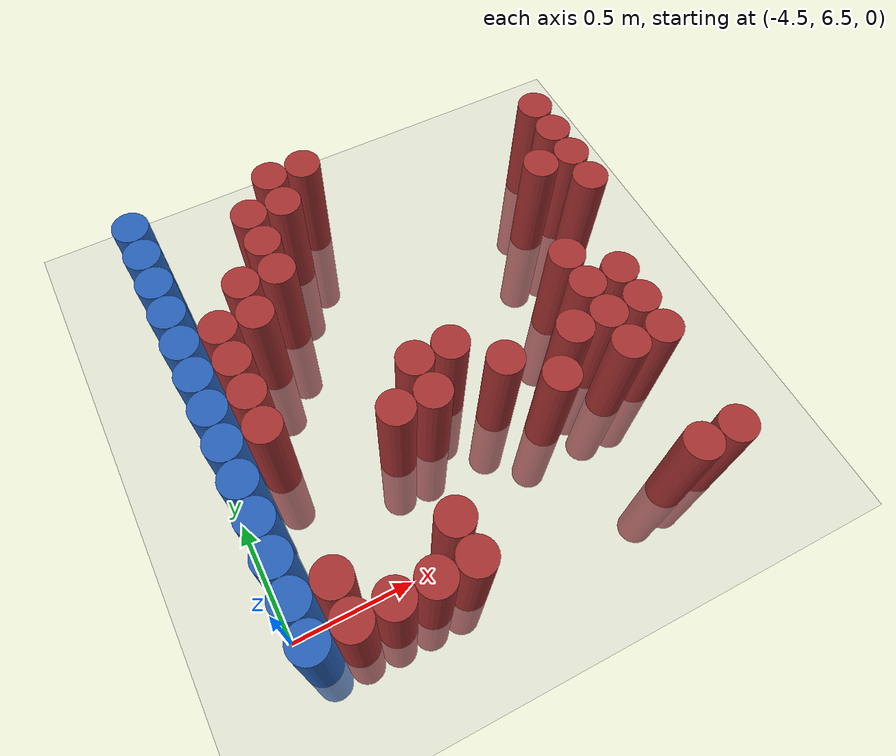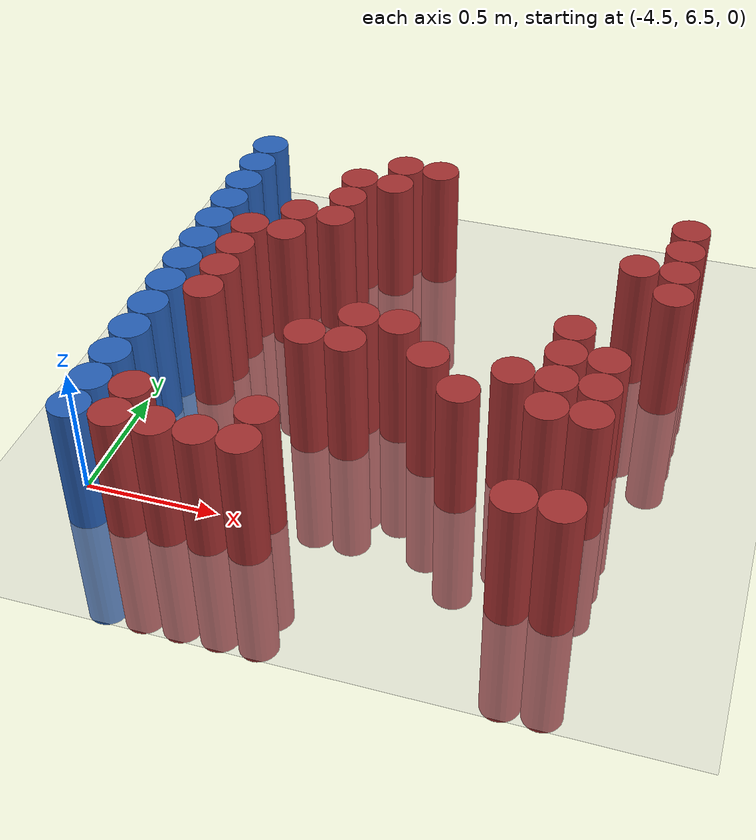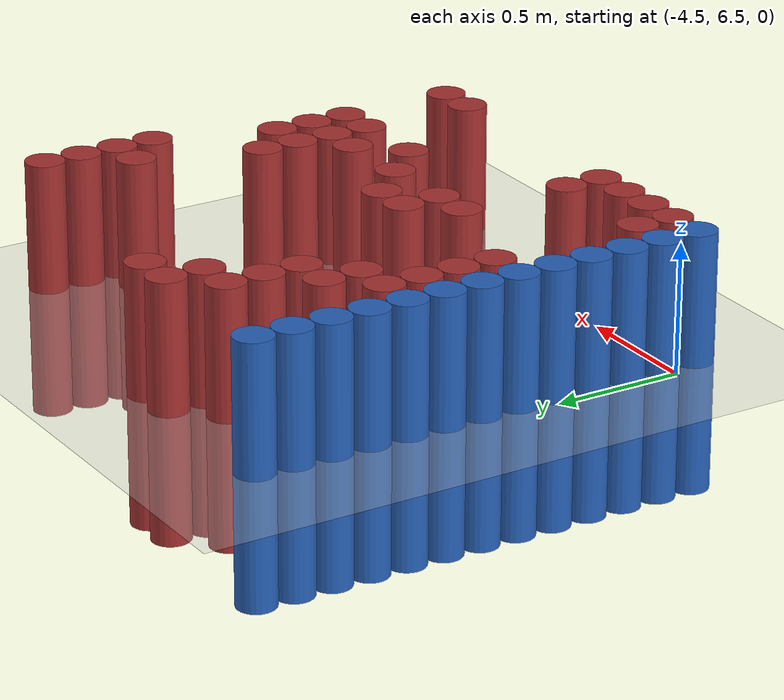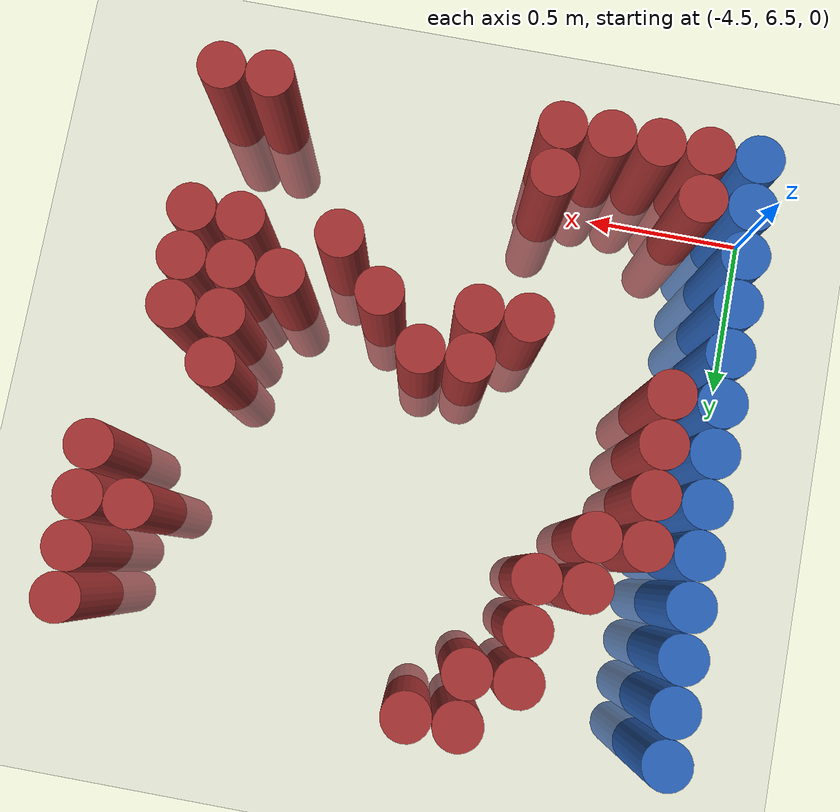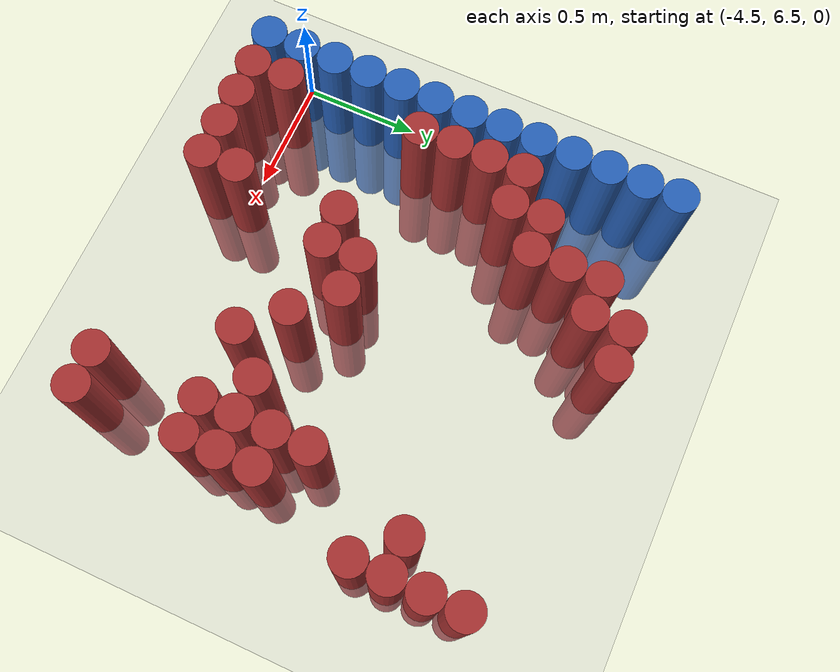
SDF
<sdf version="1.6">
 <world name="default">
  <model name="ground_plane">
   <static>1</static>
   <link name="link">
    <collision name="collision">
     <geometry><plane><normal>0 0 1</normal><size>100 100</size></plane></geometry>
     <surface><friction><ode><mu>100</mu><mu2>50</mu2></ode></friction></surface>
    </collision>
    <visual name="visual">
     <cast_shadows>0</cast_shadows>
     <geometry><plane><normal>0 0 1</normal><size>100 100</size></plane></geometry>
     <material>
      <script><uri>file://media/materials/scripts/gazebo.material</uri><name>Gazebo/Grey</name></script>
     </material>
    </visual>
   </link>
  </model>
  <model name="unit_cylinder_104">
   <static>1</static>
   <pose>-4.425000 6.375000 0.000000 0.000000 0.000000 0.000000</pose>
   <link name="link">
    <inertial>
     <mass>1</mass>
     <inertia><ixx>0.145833</ixx><ixy>0</ixy><ixz>0</ixz><iyy>0.145833</iyy><iyz>0</iyz><izz>0.125</izz></inertia>
    </inertial>
    <collision name="collision">
     <geometry><cylinder><radius>0.075000</radius><length>1</length></cylinder></geometry>
    </collision>
    <visual name="visual">
     <geometry><cylinder><radius>0.075000</radius><length>1</length></cylinder></geometry>
     <material>
      <ambient>0.152000 0.379000 0.720000 1</ambient>
      <diffuse>0.152000 0.379000 0.720000 1</diffuse>
     </material>
     <material>
      <script><name>Gazebo/Grey</name><uri>file://media/materials/scripts/gazebo.material</uri></script>
     </material>
    </visual>
   </link>
  </model>
  <model name="unit_cylinder_105">
   <static>1</static>
   <pose>-4.425000 6.525000 0.000000 0.000000 0.000000 0.000000</pose>
   <link name="link">
    <inertial>
     <mass>1</mass>
     <inertia><ixx>0.145833</ixx><ixy>0</ixy><ixz>0</ixz><iyy>0.145833</iyy><iyz>0</iyz><izz>0.125</izz></inertia>
    </inertial>
    <collision name="collision">
     <geometry><cylinder><radius>0.075000</radius><length>1</length></cylinder></geometry>
    </collision>
    <visual name="visual">
     <geometry><cylinder><radius>0.075000</radius><length>1</length></cylinder></geometry>
     <material>
      <ambient>0.152000 0.379000 0.720000 1</ambient>
      <diffuse>0.152000 0.379000 0.720000 1</diffuse>
     </material>
     <material>
      <script><name>Gazebo/Grey</name><uri>file://media/materials/scripts/gazebo.material</uri></script>
     </material>
    </visual>
   </link>
  </model>
  <model name="unit_cylinder_106">
   <static>1</static>
   <pose>-4.425000 6.675000 0.000000 0.000000 0.000000 0.000000</pose>
   <link name="link">
    <inertial>
     <mass>1</mass>
     <inertia><ixx>0.145833</ixx><ixy>0</ixy><ixz>0</ixz><iyy>0.145833</iyy><iyz>0</iyz><izz>0.125</izz></inertia>
    </inertial>
    <collision name="collision">
     <geometry><cylinder><radius>0.075000</radius><length>1</length></cylinder></geometry>
    </collision>
    <visual name="visual">
     <geometry><cylinder><radius>0.075000</radius><length>1</length></cylinder></geometry>
     <material>
      <ambient>0.152000 0.379000 0.720000 1</ambient>
      <diffuse>0.152000 0.379000 0.720000 1</diffuse>
     </material>
     <material>
      <script><name>Gazebo/Grey</name><uri>file://media/materials/scripts/gazebo.material</uri></script>
     </material>
    </visual>
   </link>
  </model>
  <model name="unit_cylinder_107">
   <static>1</static>
   <pose>-4.425000 6.825000 0.000000 0.000000 0.000000 0.000000</pose>
   <link name="link">
    <inertial>
     <mass>1</mass>
     <inertia><ixx>0.145833</ixx><ixy>0</ixy><ixz>0</ixz><iyy>0.145833</iyy><iyz>0</iyz><izz>0.125</izz></inertia>
    </inertial>
    <collision name="collision">
     <geometry><cylinder><radius>0.075000</radius><length>1</length></cylinder></geometry>
    </collision>
    <visual name="visual">
     <geometry><cylinder><radius>0.075000</radius><length>1</length></cylinder></geometry>
     <material>
      <ambient>0.152000 0.379000 0.720000 1</ambient>
      <diffuse>0.152000 0.379000 0.720000 1</diffuse>
     </material>
     <material>
      <script><name>Gazebo/Grey</name><uri>file://media/materials/scripts/gazebo.material</uri></script>
     </material>
    </visual>
   </link>
  </model>
  <model name="unit_cylinder_108">
   <static>1</static>
   <pose>-4.425000 6.975000 0.000000 0.000000 0.000000 0.000000</pose>
   <link name="link">
    <inertial>
     <mass>1</mass>
     <inertia><ixx>0.145833</ixx><ixy>0</ixy><ixz>0</ixz><iyy>0.145833</iyy><iyz>0</iyz><izz>0.125</izz></inertia>
    </inertial>
    <collision name="collision">
     <geometry><cylinder><radius>0.075000</radius><length>1</length></cylinder></geometry>
    </collision>
    <visual name="visual">
     <geometry><cylinder><radius>0.075000</radius><length>1</length></cylinder></geometry>
     <material>
      <ambient>0.152000 0.379000 0.720000 1</ambient>
      <diffuse>0.152000 0.379000 0.720000 1</diffuse>
     </material>
     <material>
      <script><name>Gazebo/Grey</name><uri>file://media/materials/scripts/gazebo.material</uri></script>
     </material>
    </visual>
   </link>
  </model>
  <model name="unit_cylinder_109">
   <static>1</static>
   <pose>-4.425000 7.125000 0.000000 0.000000 0.000000 0.000000</pose>
   <link name="link">
    <inertial>
     <mass>1</mass>
     <inertia><ixx>0.145833</ixx><ixy>0</ixy><ixz>0</ixz><iyy>0.145833</iyy><iyz>0</iyz><izz>0.125</izz></inertia>
    </inertial>
    <collision name="collision">
     <geometry><cylinder><radius>0.075000</radius><length>1</length></cylinder></geometry>
    </collision>
    <visual name="visual">
     <geometry><cylinder><radius>0.075000</radius><length>1</length></cylinder></geometry>
     <material>
      <ambient>0.152000 0.379000 0.720000 1</ambient>
      <diffuse>0.152000 0.379000 0.720000 1</diffuse>
     </material>
     <material>
      <script><name>Gazebo/Grey</name><uri>file://media/materials/scripts/gazebo.material</uri></script>
     </material>
    </visual>
   </link>
  </model>
  <model name="unit_cylinder_110">
   <static>1</static>
   <pose>-4.425000 7.275000 0.000000 0.000000 0.000000 0.000000</pose>
   <link name="link">
    <inertial>
     <mass>1</mass>
     <inertia><ixx>0.145833</ixx><ixy>0</ixy><ixz>0</ixz><iyy>0.145833</iyy><iyz>0</iyz><izz>0.125</izz></inertia>
    </inertial>
    <collision name="collision">
     <geometry><cylinder><radius>0.075000</radius><length>1</length></cylinder></geometry>
    </collision>
    <visual name="visual">
     <geometry><cylinder><radius>0.075000</radius><length>1</length></cylinder></geometry>
     <material>
      <ambient>0.152000 0.379000 0.720000 1</ambient>
      <diffuse>0.152000 0.379000 0.720000 1</diffuse>
     </material>
     <material>
      <script><name>Gazebo/Grey</name><uri>file://media/materials/scripts/gazebo.material</uri></script>
     </material>
    </visual>
   </link>
  </model>
  <model name="unit_cylinder_111">
   <static>1</static>
   <pose>-4.425000 7.425000 0.000000 0.000000 0.000000 0.000000</pose>
   <link name="link">
    <inertial>
     <mass>1</mass>
     <inertia><ixx>0.145833</ixx><ixy>0</ixy><ixz>0</ixz><iyy>0.145833</iyy><iyz>0</iyz><izz>0.125</izz></inertia>
    </inertial>
    <collision name="collision">
     <geometry><cylinder><radius>0.075000</radius><length>1</length></cylinder></geometry>
    </collision>
    <visual name="visual">
     <geometry><cylinder><radius>0.075000</radius><length>1</length></cylinder></geometry>
     <material>
      <ambient>0.152000 0.379000 0.720000 1</ambient>
      <diffuse>0.152000 0.379000 0.720000 1</diffuse>
     </material>
     <material>
      <script><name>Gazebo/Grey</name><uri>file://media/materials/scripts/gazebo.material</uri></script>
     </material>
    </visual>
   </link>
  </model>
  <model name="unit_cylinder_112">
   <static>1</static>
   <pose>-4.425000 7.575000 0.000000 0.000000 0.000000 0.000000</pose>
   <link name="link">
    <inertial>
     <mass>1</mass>
     <inertia><ixx>0.145833</ixx><ixy>0</ixy><ixz>0</ixz><iyy>0.145833</iyy><iyz>0</iyz><izz>0.125</izz></inertia>
    </inertial>
    <collision name="collision">
     <geometry><cylinder><radius>0.075000</radius><length>1</length></cylinder></geometry>
    </collision>
    <visual name="visual">
     <geometry><cylinder><radius>0.075000</radius><length>1</length></cylinder></geometry>
     <material>
      <ambient>0.152000 0.379000 0.720000 1</ambient>
      <diffuse>0.152000 0.379000 0.720000 1</diffuse>
     </material>
     <material>
      <script><name>Gazebo/Grey</name><uri>file://media/materials/scripts/gazebo.material</uri></script>
     </material>
    </visual>
   </link>
  </model>
  <model name="unit_cylinder_113">
   <static>1</static>
   <pose>-4.425000 7.725000 0.000000 0.000000 0.000000 0.000000</pose>
   <link name="link">
    <inertial>
     <mass>1</mass>
     <inertia><ixx>0.145833</ixx><ixy>0</ixy><ixz>0</ixz><iyy>0.145833</iyy><iyz>0</iyz><izz>0.125</izz></inertia>
    </inertial>
    <collision name="collision">
     <geometry><cylinder><radius>0.075000</radius><length>1</length></cylinder></geometry>
    </collision>
    <visual name="visual">
     <geometry><cylinder><radius>0.075000</radius><length>1</length></cylinder></geometry>
     <material>
      <ambient>0.152000 0.379000 0.720000 1</ambient>
      <diffuse>0.152000 0.379000 0.720000 1</diffuse>
     </material>
     <material>
      <script><name>Gazebo/Grey</name><uri>file://media/materials/scripts/gazebo.material</uri></script>
     </material>
    </visual>
   </link>
  </model>
  <model name="unit_cylinder_114">
   <static>1</static>
   <pose>-4.425000 7.875000 0.000000 0.000000 0.000000 0.000000</pose>
   <link name="link">
    <inertial>
     <mass>1</mass>
     <inertia><ixx>0.145833</ixx><ixy>0</ixy><ixz>0</ixz><iyy>0.145833</iyy><iyz>0</iyz><izz>0.125</izz></inertia>
    </inertial>
    <collision name="collision">
     <geometry><cylinder><radius>0.075000</radius><length>1</length></cylinder></geometry>
    </collision>
    <visual name="visual">
     <geometry><cylinder><radius>0.075000</radius><length>1</length></cylinder></geometry>
     <material>
      <ambient>0.152000 0.379000 0.720000 1</ambient>
      <diffuse>0.152000 0.379000 0.720000 1</diffuse>
     </material>
     <material>
      <script><name>Gazebo/Grey</name><uri>file://media/materials/scripts/gazebo.material</uri></script>
     </material>
    </visual>
   </link>
  </model>
  <model name="unit_cylinder_115">
   <static>1</static>
   <pose>-4.425000 8.025000 0.000000 0.000000 0.000000 0.000000</pose>
   <link name="link">
    <inertial>
     <mass>1</mass>
     <inertia><ixx>0.145833</ixx><ixy>0</ixy><ixz>0</ixz><iyy>0.145833</iyy><iyz>0</iyz><izz>0.125</izz></inertia>
    </inertial>
    <collision name="collision">
     <geometry><cylinder><radius>0.075000</radius><length>1</length></cylinder></geometry>
    </collision>
    <visual name="visual">
     <geometry><cylinder><radius>0.075000</radius><length>1</length></cylinder></geometry>
     <material>
      <ambient>0.152000 0.379000 0.720000 1</ambient>
      <diffuse>0.152000 0.379000 0.720000 1</diffuse>
     </material>
     <material>
      <script><name>Gazebo/Grey</name><uri>file://media/materials/scripts/gazebo.material</uri></script>
     </material>
    </visual>
   </link>
  </model>
  <model name="unit_cylinder_116">
   <static>1</static>
   <pose>-4.425000 8.175000 0.000000 0.000000 0.000000 0.000000</pose>
   <link name="link">
    <inertial>
     <mass>1</mass>
     <inertia><ixx>0.145833</ixx><ixy>0</ixy><ixz>0</ixz><iyy>0.145833</iyy><iyz>0</iyz><izz>0.125</izz></inertia>
    </inertial>
    <collision name="collision">
     <geometry><cylinder><radius>0.075000</radius><length>1</length></cylinder></geometry>
    </collision>
    <visual name="visual">
     <geometry><cylinder><radius>0.075000</radius><length>1</length></cylinder></geometry>
     <material>
      <ambient>0.152000 0.379000 0.720000 1</ambient>
      <diffuse>0.152000 0.379000 0.720000 1</diffuse>
     </material>
     <material>
      <script><name>Gazebo/Grey</name><uri>file://media/materials/scripts/gazebo.material</uri></script>
     </material>
    </visual>
   </link>
  </model>
  <model name="unit_cylinder_130">
   <static>1</static>
   <pose>-4.275000 6.375000 0.000000 0.000000 0.000000 0.000000</pose>
   <link name="link">
    <inertial>
     <mass>1</mass>
     <inertia><ixx>0.145833</ixx><ixy>0</ixy><ixz>0</ixz><iyy>0.145833</iyy><iyz>0</iyz><izz>0.125</izz></inertia>
    </inertial>
    <collision name="collision">
     <geometry><cylinder><radius>0.075000</radius><length>1</length></cylinder></geometry>
    </collision>
    <visual name="visual">
     <geometry><cylinder><radius>0.075000</radius><length>1</length></cylinder></geometry>
     <material>
      <ambient>0.648000 0.192000 0.192000 1</ambient>
      <diffuse>0.648000 0.192000 0.192000 1</diffuse>
     </material>
     <material>
      <script><name>Gazebo/Grey</name><uri>file://media/materials/scripts/gazebo.material</uri></script>
     </material>
    </visual>
   </link>
  </model>
  <model name="unit_cylinder_131">
   <static>1</static>
   <pose>-4.275000 6.525000 0.000000 0.000000 0.000000 0.000000</pose>
   <link name="link">
    <inertial>
     <mass>1</mass>
     <inertia><ixx>0.145833</ixx><ixy>0</ixy><ixz>0</ixz><iyy>0.145833</iyy><iyz>0</iyz><izz>0.125</izz></inertia>
    </inertial>
    <collision name="collision">
     <geometry><cylinder><radius>0.075000</radius><length>1</length></cylinder></geometry>
    </collision>
    <visual name="visual">
     <geometry><cylinder><radius>0.075000</radius><length>1</length></cylinder></geometry>
     <material>
      <ambient>0.648000 0.192000 0.192000 1</ambient>
      <diffuse>0.648000 0.192000 0.192000 1</diffuse>
     </material>
     <material>
      <script><name>Gazebo/Grey</name><uri>file://media/materials/scripts/gazebo.material</uri></script>
     </material>
    </visual>
   </link>
  </model>
  <model name="unit_cylinder_132">
   <static>1</static>
   <pose>-4.275000 7.125000 0.000000 0.000000 0.000000 0.000000</pose>
   <link name="link">
    <inertial>
     <mass>1</mass>
     <inertia><ixx>0.145833</ixx><ixy>0</ixy><ixz>0</ixz><iyy>0.145833</iyy><iyz>0</iyz><izz>0.125</izz></inertia>
    </inertial>
    <collision name="collision">
     <geometry><cylinder><radius>0.075000</radius><length>1</length></cylinder></geometry>
    </collision>
    <visual name="visual">
     <geometry><cylinder><radius>0.075000</radius><length>1</length></cylinder></geometry>
     <material>
      <ambient>0.648000 0.192000 0.192000 1</ambient>
      <diffuse>0.648000 0.192000 0.192000 1</diffuse>
     </material>
     <material>
      <script><name>Gazebo/Grey</name><uri>file://media/materials/scripts/gazebo.material</uri></script>
     </material>
    </visual>
   </link>
  </model>
  <model name="unit_cylinder_133">
   <static>1</static>
   <pose>-4.275000 7.275000 0.000000 0.000000 0.000000 0.000000</pose>
   <link name="link">
    <inertial>
     <mass>1</mass>
     <inertia><ixx>0.145833</ixx><ixy>0</ixy><ixz>0</ixz><iyy>0.145833</iyy><iyz>0</iyz><izz>0.125</izz></inertia>
    </inertial>
    <collision name="collision">
     <geometry><cylinder><radius>0.075000</radius><length>1</length></cylinder></geometry>
    </collision>
    <visual name="visual">
     <geometry><cylinder><radius>0.075000</radius><length>1</length></cylinder></geometry>
     <material>
      <ambient>0.648000 0.192000 0.192000 1</ambient>
      <diffuse>0.648000 0.192000 0.192000 1</diffuse>
     </material>
     <material>
      <script><name>Gazebo/Grey</name><uri>file://media/materials/scripts/gazebo.material</uri></script>
     </material>
    </visual>
   </link>
  </model>
  <model name="unit_cylinder_134">
   <static>1</static>
   <pose>-4.275000 7.425000 0.000000 0.000000 0.000000 0.000000</pose>
   <link name="link">
    <inertial>
     <mass>1</mass>
     <inertia><ixx>0.145833</ixx><ixy>0</ixy><ixz>0</ixz><iyy>0.145833</iyy><iyz>0</iyz><izz>0.125</izz></inertia>
    </inertial>
    <collision name="collision">
     <geometry><cylinder><radius>0.075000</radius><length>1</length></cylinder></geometry>
    </collision>
    <visual name="visual">
     <geometry><cylinder><radius>0.075000</radius><length>1</length></cylinder></geometry>
     <material>
      <ambient>0.648000 0.192000 0.192000 1</ambient>
      <diffuse>0.648000 0.192000 0.192000 1</diffuse>
     </material>
     <material>
      <script><name>Gazebo/Grey</name><uri>file://media/materials/scripts/gazebo.material</uri></script>
     </material>
    </visual>
   </link>
  </model>
  <model name="unit_cylinder_135">
   <static>1</static>
   <pose>-4.275000 7.575000 0.000000 0.000000 0.000000 0.000000</pose>
   <link name="link">
    <inertial>
     <mass>1</mass>
     <inertia><ixx>0.145833</ixx><ixy>0</ixy><ixz>0</ixz><iyy>0.145833</iyy><iyz>0</iyz><izz>0.125</izz></inertia>
    </inertial>
    <collision name="collision">
     <geometry><cylinder><radius>0.075000</radius><length>1</length></cylinder></geometry>
    </collision>
    <visual name="visual">
     <geometry><cylinder><radius>0.075000</radius><length>1</length></cylinder></geometry>
     <material>
      <ambient>0.648000 0.192000 0.192000 1</ambient>
      <diffuse>0.648000 0.192000 0.192000 1</diffuse>
     </material>
     <material>
      <script><name>Gazebo/Grey</name><uri>file://media/materials/scripts/gazebo.material</uri></script>
     </material>
    </visual>
   </link>
  </model>
  <model name="unit_cylinder_145">
   <static>1</static>
   <pose>-4.125000 6.375000 0.000000 0.000000 0.000000 0.000000</pose>
   <link name="link">
    <inertial>
     <mass>1</mass>
     <inertia><ixx>0.145833</ixx><ixy>0</ixy><ixz>0</ixz><iyy>0.145833</iyy><iyz>0</iyz><izz>0.125</izz></inertia>
    </inertial>
    <collision name="collision">
     <geometry><cylinder><radius>0.075000</radius><length>1</length></cylinder></geometry>
    </collision>
    <visual name="visual">
     <geometry><cylinder><radius>0.075000</radius><length>1</length></cylinder></geometry>
     <material>
      <ambient>0.648000 0.192000 0.192000 1</ambient>
      <diffuse>0.648000 0.192000 0.192000 1</diffuse>
     </material>
     <material>
      <script><name>Gazebo/Grey</name><uri>file://media/materials/scripts/gazebo.material</uri></script>
     </material>
    </visual>
   </link>
  </model>
  <model name="unit_cylinder_146">
   <static>1</static>
   <pose>-4.125000 7.575000 0.000000 0.000000 0.000000 0.000000</pose>
   <link name="link">
    <inertial>
     <mass>1</mass>
     <inertia><ixx>0.145833</ixx><ixy>0</ixy><ixz>0</ixz><iyy>0.145833</iyy><iyz>0</iyz><izz>0.125</izz></inertia>
    </inertial>
    <collision name="collision">
     <geometry><cylinder><radius>0.075000</radius><length>1</length></cylinder></geometry>
    </collision>
    <visual name="visual">
     <geometry><cylinder><radius>0.075000</radius><length>1</length></cylinder></geometry>
     <material>
      <ambient>0.648000 0.192000 0.192000 1</ambient>
      <diffuse>0.648000 0.192000 0.192000 1</diffuse>
     </material>
     <material>
      <script><name>Gazebo/Grey</name><uri>file://media/materials/scripts/gazebo.material</uri></script>
     </material>
    </visual>
   </link>
  </model>
  <model name="unit_cylinder_147">
   <static>1</static>
   <pose>-4.125000 7.725000 0.000000 0.000000 0.000000 0.000000</pose>
   <link name="link">
    <inertial>
     <mass>1</mass>
     <inertia><ixx>0.145833</ixx><ixy>0</ixy><ixz>0</ixz><iyy>0.145833</iyy><iyz>0</iyz><izz>0.125</izz></inertia>
    </inertial>
    <collision name="collision">
     <geometry><cylinder><radius>0.075000</radius><length>1</length></cylinder></geometry>
    </collision>
    <visual name="visual">
     <geometry><cylinder><radius>0.075000</radius><length>1</length></cylinder></geometry>
     <material>
      <ambient>0.648000 0.192000 0.192000 1</ambient>
      <diffuse>0.648000 0.192000 0.192000 1</diffuse>
     </material>
     <material>
      <script><name>Gazebo/Grey</name><uri>file://media/materials/scripts/gazebo.material</uri></script>
     </material>
    </visual>
   </link>
  </model>
  <model name="unit_cylinder_153">
   <static>1</static>
   <pose>-3.975000 6.375000 0.000000 0.000000 0.000000 0.000000</pose>
   <link name="link">
    <inertial>
     <mass>1</mass>
     <inertia><ixx>0.145833</ixx><ixy>0</ixy><ixz>0</ixz><iyy>0.145833</iyy><iyz>0</iyz><izz>0.125</izz></inertia>
    </inertial>
    <collision name="collision">
     <geometry><cylinder><radius>0.075000</radius><length>1</length></cylinder></geometry>
    </collision>
    <visual name="visual">
     <geometry><cylinder><radius>0.075000</radius><length>1</length></cylinder></geometry>
     <material>
      <ambient>0.648000 0.192000 0.192000 1</ambient>
      <diffuse>0.648000 0.192000 0.192000 1</diffuse>
     </material>
     <material>
      <script><name>Gazebo/Grey</name><uri>file://media/materials/scripts/gazebo.material</uri></script>
     </material>
    </visual>
   </link>
  </model>
  <model name="unit_cylinder_154">
   <static>1</static>
   <pose>-3.975000 7.725000 0.000000 0.000000 0.000000 0.000000</pose>
   <link name="link">
    <inertial>
     <mass>1</mass>
     <inertia><ixx>0.145833</ixx><ixy>0</ixy><ixz>0</ixz><iyy>0.145833</iyy><iyz>0</iyz><izz>0.125</izz></inertia>
    </inertial>
    <collision name="collision">
     <geometry><cylinder><radius>0.075000</radius><length>1</length></cylinder></geometry>
    </collision>
    <visual name="visual">
     <geometry><cylinder><radius>0.075000</radius><length>1</length></cylinder></geometry>
     <material>
      <ambient>0.648000 0.192000 0.192000 1</ambient>
      <diffuse>0.648000 0.192000 0.192000 1</diffuse>
     </material>
     <material>
      <script><name>Gazebo/Grey</name><uri>file://media/materials/scripts/gazebo.material</uri></script>
     </material>
    </visual>
   </link>
  </model>
  <model name="unit_cylinder_155">
   <static>1</static>
   <pose>-3.975000 7.875000 0.000000 0.000000 0.000000 0.000000</pose>
   <link name="link">
    <inertial>
     <mass>1</mass>
     <inertia><ixx>0.145833</ixx><ixy>0</ixy><ixz>0</ixz><iyy>0.145833</iyy><iyz>0</iyz><izz>0.125</izz></inertia>
    </inertial>
    <collision name="collision">
     <geometry><cylinder><radius>0.075000</radius><length>1</length></cylinder></geometry>
    </collision>
    <visual name="visual">
     <geometry><cylinder><radius>0.075000</radius><length>1</length></cylinder></geometry>
     <material>
      <ambient>0.648000 0.192000 0.192000 1</ambient>
      <diffuse>0.648000 0.192000 0.192000 1</diffuse>
     </material>
     <material>
      <script><name>Gazebo/Grey</name><uri>file://media/materials/scripts/gazebo.material</uri></script>
     </material>
    </visual>
   </link>
  </model>
  <model name="unit_cylinder_156">
   <static>1</static>
   <pose>-3.975000 8.025000 0.000000 0.000000 0.000000 0.000000</pose>
   <link name="link">
    <inertial>
     <mass>1</mass>
     <inertia><ixx>0.145833</ixx><ixy>0</ixy><ixz>0</ixz><iyy>0.145833</iyy><iyz>0</iyz><izz>0.125</izz></inertia>
    </inertial>
    <collision name="collision">
     <geometry><cylinder><radius>0.075000</radius><length>1</length></cylinder></geometry>
    </collision>
    <visual name="visual">
     <geometry><cylinder><radius>0.075000</radius><length>1</length></cylinder></geometry>
     <material>
      <ambient>0.648000 0.192000 0.192000 1</ambient>
      <diffuse>0.648000 0.192000 0.192000 1</diffuse>
     </material>
     <material>
      <script><name>Gazebo/Grey</name><uri>file://media/materials/scripts/gazebo.material</uri></script>
     </material>
    </visual>
   </link>
  </model>
  <model name="unit_cylinder_160">
   <static>1</static>
   <pose>-3.825000 6.375000 0.000000 0.000000 0.000000 0.000000</pose>
   <link name="link">
    <inertial>
     <mass>1</mass>
     <inertia><ixx>0.145833</ixx><ixy>0</ixy><ixz>0</ixz><iyy>0.145833</iyy><iyz>0</iyz><izz>0.125</izz></inertia>
    </inertial>
    <collision name="collision">
     <geometry><cylinder><radius>0.075000</radius><length>1</length></cylinder></geometry>
    </collision>
    <visual name="visual">
     <geometry><cylinder><radius>0.075000</radius><length>1</length></cylinder></geometry>
     <material>
      <ambient>0.648000 0.192000 0.192000 1</ambient>
      <diffuse>0.648000 0.192000 0.192000 1</diffuse>
     </material>
     <material>
      <script><name>Gazebo/Grey</name><uri>file://media/materials/scripts/gazebo.material</uri></script>
     </material>
    </visual>
   </link>
  </model>
  <model name="unit_cylinder_161">
   <static>1</static>
   <pose>-3.825000 6.525000 0.000000 0.000000 0.000000 0.000000</pose>
   <link name="link">
    <inertial>
     <mass>1</mass>
     <inertia><ixx>0.145833</ixx><ixy>0</ixy><ixz>0</ixz><iyy>0.145833</iyy><iyz>0</iyz><izz>0.125</izz></inertia>
    </inertial>
    <collision name="collision">
     <geometry><cylinder><radius>0.075000</radius><length>1</length></cylinder></geometry>
    </collision>
    <visual name="visual">
     <geometry><cylinder><radius>0.075000</radius><length>1</length></cylinder></geometry>
     <material>
      <ambient>0.648000 0.192000 0.192000 1</ambient>
      <diffuse>0.648000 0.192000 0.192000 1</diffuse>
     </material>
     <material>
      <script><name>Gazebo/Grey</name><uri>file://media/materials/scripts/gazebo.material</uri></script>
     </material>
    </visual>
   </link>
  </model>
  <model name="unit_cylinder_162">
   <static>1</static>
   <pose>-3.825000 6.975000 0.000000 0.000000 0.000000 0.000000</pose>
   <link name="link">
    <inertial>
     <mass>1</mass>
     <inertia><ixx>0.145833</ixx><ixy>0</ixy><ixz>0</ixz><iyy>0.145833</iyy><iyz>0</iyz><izz>0.125</izz></inertia>
    </inertial>
    <collision name="collision">
     <geometry><cylinder><radius>0.075000</radius><length>1</length></cylinder></geometry>
    </collision>
    <visual name="visual">
     <geometry><cylinder><radius>0.075000</radius><length>1</length></cylinder></geometry>
     <material>
      <ambient>0.648000 0.192000 0.192000 1</ambient>
      <diffuse>0.648000 0.192000 0.192000 1</diffuse>
     </material>
     <material>
      <script><name>Gazebo/Grey</name><uri>file://media/materials/scripts/gazebo.material</uri></script>
     </material>
    </visual>
   </link>
  </model>
  <model name="unit_cylinder_163">
   <static>1</static>
   <pose>-3.825000 8.025000 0.000000 0.000000 0.000000 0.000000</pose>
   <link name="link">
    <inertial>
     <mass>1</mass>
     <inertia><ixx>0.145833</ixx><ixy>0</ixy><ixz>0</ixz><iyy>0.145833</iyy><iyz>0</iyz><izz>0.125</izz></inertia>
    </inertial>
    <collision name="collision">
     <geometry><cylinder><radius>0.075000</radius><length>1</length></cylinder></geometry>
    </collision>
    <visual name="visual">
     <geometry><cylinder><radius>0.075000</radius><length>1</length></cylinder></geometry>
     <material>
      <ambient>0.648000 0.192000 0.192000 1</ambient>
      <diffuse>0.648000 0.192000 0.192000 1</diffuse>
     </material>
     <material>
      <script><name>Gazebo/Grey</name><uri>file://media/materials/scripts/gazebo.material</uri></script>
     </material>
    </visual>
   </link>
  </model>
  <model name="unit_cylinder_164">
   <static>1</static>
   <pose>-3.825000 8.175000 0.000000 0.000000 0.000000 0.000000</pose>
   <link name="link">
    <inertial>
     <mass>1</mass>
     <inertia><ixx>0.145833</ixx><ixy>0</ixy><ixz>0</ixz><iyy>0.145833</iyy><iyz>0</iyz><izz>0.125</izz></inertia>
    </inertial>
    <collision name="collision">
     <geometry><cylinder><radius>0.075000</radius><length>1</length></cylinder></geometry>
    </collision>
    <visual name="visual">
     <geometry><cylinder><radius>0.075000</radius><length>1</length></cylinder></geometry>
     <material>
      <ambient>0.648000 0.192000 0.192000 1</ambient>
      <diffuse>0.648000 0.192000 0.192000 1</diffuse>
     </material>
     <material>
      <script><name>Gazebo/Grey</name><uri>file://media/materials/scripts/gazebo.material</uri></script>
     </material>
    </visual>
   </link>
  </model>
  <model name="unit_cylinder_173">
   <static>1</static>
   <pose>-3.675000 6.975000 0.000000 0.000000 0.000000 0.000000</pose>
   <link name="link">
    <inertial>
     <mass>1</mass>
     <inertia><ixx>0.145833</ixx><ixy>0</ixy><ixz>0</ixz><iyy>0.145833</iyy><iyz>0</iyz><izz>0.125</izz></inertia>
    </inertial>
    <collision name="collision">
     <geometry><cylinder><radius>0.075000</radius><length>1</length></cylinder></geometry>
    </collision>
    <visual name="visual">
     <geometry><cylinder><radius>0.075000</radius><length>1</length></cylinder></geometry>
     <material>
      <ambient>0.648000 0.192000 0.192000 1</ambient>
      <diffuse>0.648000 0.192000 0.192000 1</diffuse>
     </material>
     <material>
      <script><name>Gazebo/Grey</name><uri>file://media/materials/scripts/gazebo.material</uri></script>
     </material>
    </visual>
   </link>
  </model>
  <model name="unit_cylinder_174">
   <static>1</static>
   <pose>-3.675000 7.125000 0.000000 0.000000 0.000000 0.000000</pose>
   <link name="link">
    <inertial>
     <mass>1</mass>
     <inertia><ixx>0.145833</ixx><ixy>0</ixy><ixz>0</ixz><iyy>0.145833</iyy><iyz>0</iyz><izz>0.125</izz></inertia>
    </inertial>
    <collision name="collision">
     <geometry><cylinder><radius>0.075000</radius><length>1</length></cylinder></geometry>
    </collision>
    <visual name="visual">
     <geometry><cylinder><radius>0.075000</radius><length>1</length></cylinder></geometry>
     <material>
      <ambient>0.648000 0.192000 0.192000 1</ambient>
      <diffuse>0.648000 0.192000 0.192000 1</diffuse>
     </material>
     <material>
      <script><name>Gazebo/Grey</name><uri>file://media/materials/scripts/gazebo.material</uri></script>
     </material>
    </visual>
   </link>
  </model>
  <model name="unit_cylinder_175">
   <static>1</static>
   <pose>-3.675000 8.175000 0.000000 0.000000 0.000000 0.000000</pose>
   <link name="link">
    <inertial>
     <mass>1</mass>
     <inertia><ixx>0.145833</ixx><ixy>0</ixy><ixz>0</ixz><iyy>0.145833</iyy><iyz>0</iyz><izz>0.125</izz></inertia>
    </inertial>
    <collision name="collision">
     <geometry><cylinder><radius>0.075000</radius><length>1</length></cylinder></geometry>
    </collision>
    <visual name="visual">
     <geometry><cylinder><radius>0.075000</radius><length>1</length></cylinder></geometry>
     <material>
      <ambient>0.648000 0.192000 0.192000 1</ambient>
      <diffuse>0.648000 0.192000 0.192000 1</diffuse>
     </material>
     <material>
      <script><name>Gazebo/Grey</name><uri>file://media/materials/scripts/gazebo.material</uri></script>
     </material>
    </visual>
   </link>
  </model>
  <model name="unit_cylinder_182">
   <static>1</static>
   <pose>-3.525000 7.125000 0.000000 0.000000 0.000000 0.000000</pose>
   <link name="link">
    <inertial>
     <mass>1</mass>
     <inertia><ixx>0.145833</ixx><ixy>0</ixy><ixz>0</ixz><iyy>0.145833</iyy><iyz>0</iyz><izz>0.125</izz></inertia>
    </inertial>
    <collision name="collision">
     <geometry><cylinder><radius>0.075000</radius><length>1</length></cylinder></geometry>
    </collision>
    <visual name="visual">
     <geometry><cylinder><radius>0.075000</radius><length>1</length></cylinder></geometry>
     <material>
      <ambient>0.648000 0.192000 0.192000 1</ambient>
      <diffuse>0.648000 0.192000 0.192000 1</diffuse>
     </material>
     <material>
      <script><name>Gazebo/Grey</name><uri>file://media/materials/scripts/gazebo.material</uri></script>
     </material>
    </visual>
   </link>
  </model>
  <model name="unit_cylinder_190">
   <static>1</static>
   <pose>-3.375000 6.975000 0.000000 0.000000 0.000000 0.000000</pose>
   <link name="link">
    <inertial>
     <mass>1</mass>
     <inertia><ixx>0.145833</ixx><ixy>0</ixy><ixz>0</ixz><iyy>0.145833</iyy><iyz>0</iyz><izz>0.125</izz></inertia>
    </inertial>
    <collision name="collision">
     <geometry><cylinder><radius>0.075000</radius><length>1</length></cylinder></geometry>
    </collision>
    <visual name="visual">
     <geometry><cylinder><radius>0.075000</radius><length>1</length></cylinder></geometry>
     <material>
      <ambient>0.648000 0.192000 0.192000 1</ambient>
      <diffuse>0.648000 0.192000 0.192000 1</diffuse>
     </material>
     <material>
      <script><name>Gazebo/Grey</name><uri>file://media/materials/scripts/gazebo.material</uri></script>
     </material>
    </visual>
   </link>
  </model>
  <model name="unit_cylinder_199">
   <static>1</static>
   <pose>-3.225000 6.825000 0.000000 0.000000 0.000000 0.000000</pose>
   <link name="link">
    <inertial>
     <mass>1</mass>
     <inertia><ixx>0.145833</ixx><ixy>0</ixy><ixz>0</ixz><iyy>0.145833</iyy><iyz>0</iyz><izz>0.125</izz></inertia>
    </inertial>
    <collision name="collision">
     <geometry><cylinder><radius>0.075000</radius><length>1</length></cylinder></geometry>
    </collision>
    <visual name="visual">
     <geometry><cylinder><radius>0.075000</radius><length>1</length></cylinder></geometry>
     <material>
      <ambient>0.648000 0.192000 0.192000 1</ambient>
      <diffuse>0.648000 0.192000 0.192000 1</diffuse>
     </material>
     <material>
      <script><name>Gazebo/Grey</name><uri>file://media/materials/scripts/gazebo.material</uri></script>
     </material>
    </visual>
   </link>
  </model>
  <model name="unit_cylinder_206">
   <static>1</static>
   <pose>-3.075000 6.975000 0.000000 0.000000 0.000000 0.000000</pose>
   <link name="link">
    <inertial>
     <mass>1</mass>
     <inertia><ixx>0.145833</ixx><ixy>0</ixy><ixz>0</ixz><iyy>0.145833</iyy><iyz>0</iyz><izz>0.125</izz></inertia>
    </inertial>
    <collision name="collision">
     <geometry><cylinder><radius>0.075000</radius><length>1</length></cylinder></geometry>
    </collision>
    <visual name="visual">
     <geometry><cylinder><radius>0.075000</radius><length>1</length></cylinder></geometry>
     <material>
      <ambient>0.648000 0.192000 0.192000 1</ambient>
      <diffuse>0.648000 0.192000 0.192000 1</diffuse>
     </material>
     <material>
      <script><name>Gazebo/Grey</name><uri>file://media/materials/scripts/gazebo.material</uri></script>
     </material>
    </visual>
   </link>
  </model>
  <model name="unit_cylinder_214">
   <static>1</static>
   <pose>-2.925000 6.375000 0.000000 0.000000 0.000000 0.000000</pose>
   <link name="link">
    <inertial>
     <mass>1</mass>
     <inertia><ixx>0.145833</ixx><ixy>0</ixy><ixz>0</ixz><iyy>0.145833</iyy><iyz>0</iyz><izz>0.125</izz></inertia>
    </inertial>
    <collision name="collision">
     <geometry><cylinder><radius>0.075000</radius><length>1</length></cylinder></geometry>
    </collision>
    <visual name="visual">
     <geometry><cylinder><radius>0.075000</radius><length>1</length></cylinder></geometry>
     <material>
      <ambient>0.648000 0.192000 0.192000 1</ambient>
      <diffuse>0.648000 0.192000 0.192000 1</diffuse>
     </material>
     <material>
      <script><name>Gazebo/Grey</name><uri>file://media/materials/scripts/gazebo.material</uri></script>
     </material>
    </visual>
   </link>
  </model>
  <model name="unit_cylinder_215">
   <static>1</static>
   <pose>-2.925000 6.825000 0.000000 0.000000 0.000000 0.000000</pose>
   <link name="link">
    <inertial>
     <mass>1</mass>
     <inertia><ixx>0.145833</ixx><ixy>0</ixy><ixz>0</ixz><iyy>0.145833</iyy><iyz>0</iyz><izz>0.125</izz></inertia>
    </inertial>
    <collision name="collision">
     <geometry><cylinder><radius>0.075000</radius><length>1</length></cylinder></geometry>
    </collision>
    <visual name="visual">
     <geometry><cylinder><radius>0.075000</radius><length>1</length></cylinder></geometry>
     <material>
      <ambient>0.648000 0.192000 0.192000 1</ambient>
      <diffuse>0.648000 0.192000 0.192000 1</diffuse>
     </material>
     <material>
      <script><name>Gazebo/Grey</name><uri>file://media/materials/scripts/gazebo.material</uri></script>
     </material>
    </visual>
   </link>
  </model>
  <model name="unit_cylinder_216">
   <static>1</static>
   <pose>-2.925000 6.975000 0.000000 0.000000 0.000000 0.000000</pose>
   <link name="link">
    <inertial>
     <mass>1</mass>
     <inertia><ixx>0.145833</ixx><ixy>0</ixy><ixz>0</ixz><iyy>0.145833</iyy><iyz>0</iyz><izz>0.125</izz></inertia>
    </inertial>
    <collision name="collision">
     <geometry><cylinder><radius>0.075000</radius><length>1</length></cylinder></geometry>
    </collision>
    <visual name="visual">
     <geometry><cylinder><radius>0.075000</radius><length>1</length></cylinder></geometry>
     <material>
      <ambient>0.648000 0.192000 0.192000 1</ambient>
      <diffuse>0.648000 0.192000 0.192000 1</diffuse>
     </material>
     <material>
      <script><name>Gazebo/Grey</name><uri>file://media/materials/scripts/gazebo.material</uri></script>
     </material>
    </visual>
   </link>
  </model>
  <model name="unit_cylinder_217">
   <static>1</static>
   <pose>-2.925000 7.125000 0.000000 0.000000 0.000000 0.000000</pose>
   <link name="link">
    <inertial>
     <mass>1</mass>
     <inertia><ixx>0.145833</ixx><ixy>0</ixy><ixz>0</ixz><iyy>0.145833</iyy><iyz>0</iyz><izz>0.125</izz></inertia>
    </inertial>
    <collision name="collision">
     <geometry><cylinder><radius>0.075000</radius><length>1</length></cylinder></geometry>
    </collision>
    <visual name="visual">
     <geometry><cylinder><radius>0.075000</radius><length>1</length></cylinder></geometry>
     <material>
      <ambient>0.648000 0.192000 0.192000 1</ambient>
      <diffuse>0.648000 0.192000 0.192000 1</diffuse>
     </material>
     <material>
      <script><name>Gazebo/Grey</name><uri>file://media/materials/scripts/gazebo.material</uri></script>
     </material>
    </visual>
   </link>
  </model>
  <model name="unit_cylinder_218">
   <static>1</static>
   <pose>-2.925000 7.275000 0.000000 0.000000 0.000000 0.000000</pose>
   <link name="link">
    <inertial>
     <mass>1</mass>
     <inertia><ixx>0.145833</ixx><ixy>0</ixy><ixz>0</ixz><iyy>0.145833</iyy><iyz>0</iyz><izz>0.125</izz></inertia>
    </inertial>
    <collision name="collision">
     <geometry><cylinder><radius>0.075000</radius><length>1</length></cylinder></geometry>
    </collision>
    <visual name="visual">
     <geometry><cylinder><radius>0.075000</radius><length>1</length></cylinder></geometry>
     <material>
      <ambient>0.648000 0.192000 0.192000 1</ambient>
      <diffuse>0.648000 0.192000 0.192000 1</diffuse>
     </material>
     <material>
      <script><name>Gazebo/Grey</name><uri>file://media/materials/scripts/gazebo.material</uri></script>
     </material>
    </visual>
   </link>
  </model>
  <model name="unit_cylinder_224">
   <static>1</static>
   <pose>-2.775000 6.375000 0.000000 0.000000 0.000000 0.000000</pose>
   <link name="link">
    <inertial>
     <mass>1</mass>
     <inertia><ixx>0.145833</ixx><ixy>0</ixy><ixz>0</ixz><iyy>0.145833</iyy><iyz>0</iyz><izz>0.125</izz></inertia>
    </inertial>
    <collision name="collision">
     <geometry><cylinder><radius>0.075000</radius><length>1</length></cylinder></geometry>
    </collision>
    <visual name="visual">
     <geometry><cylinder><radius>0.075000</radius><length>1</length></cylinder></geometry>
     <material>
      <ambient>0.648000 0.192000 0.192000 1</ambient>
      <diffuse>0.648000 0.192000 0.192000 1</diffuse>
     </material>
     <material>
      <script><name>Gazebo/Grey</name><uri>file://media/materials/scripts/gazebo.material</uri></script>
     </material>
    </visual>
   </link>
  </model>
  <model name="unit_cylinder_225">
   <static>1</static>
   <pose>-2.775000 6.825000 0.000000 0.000000 0.000000 0.000000</pose>
   <link name="link">
    <inertial>
     <mass>1</mass>
     <inertia><ixx>0.145833</ixx><ixy>0</ixy><ixz>0</ixz><iyy>0.145833</iyy><iyz>0</iyz><izz>0.125</izz></inertia>
    </inertial>
    <collision name="collision">
     <geometry><cylinder><radius>0.075000</radius><length>1</length></cylinder></geometry>
    </collision>
    <visual name="visual">
     <geometry><cylinder><radius>0.075000</radius><length>1</length></cylinder></geometry>
     <material>
      <ambient>0.648000 0.192000 0.192000 1</ambient>
      <diffuse>0.648000 0.192000 0.192000 1</diffuse>
     </material>
     <material>
      <script><name>Gazebo/Grey</name><uri>file://media/materials/scripts/gazebo.material</uri></script>
     </material>
    </visual>
   </link>
  </model>
  <model name="unit_cylinder_226">
   <static>1</static>
   <pose>-2.775000 6.975000 0.000000 0.000000 0.000000 0.000000</pose>
   <link name="link">
    <inertial>
     <mass>1</mass>
     <inertia><ixx>0.145833</ixx><ixy>0</ixy><ixz>0</ixz><iyy>0.145833</iyy><iyz>0</iyz><izz>0.125</izz></inertia>
    </inertial>
    <collision name="collision">
     <geometry><cylinder><radius>0.075000</radius><length>1</length></cylinder></geometry>
    </collision>
    <visual name="visual">
     <geometry><cylinder><radius>0.075000</radius><length>1</length></cylinder></geometry>
     <material>
      <ambient>0.648000 0.192000 0.192000 1</ambient>
      <diffuse>0.648000 0.192000 0.192000 1</diffuse>
     </material>
     <material>
      <script><name>Gazebo/Grey</name><uri>file://media/materials/scripts/gazebo.material</uri></script>
     </material>
    </visual>
   </link>
  </model>
  <model name="unit_cylinder_227">
   <static>1</static>
   <pose>-2.775000 7.125000 0.000000 0.000000 0.000000 0.000000</pose>
   <link name="link">
    <inertial>
     <mass>1</mass>
     <inertia><ixx>0.145833</ixx><ixy>0</ixy><ixz>0</ixz><iyy>0.145833</iyy><iyz>0</iyz><izz>0.125</izz></inertia>
    </inertial>
    <collision name="collision">
     <geometry><cylinder><radius>0.075000</radius><length>1</length></cylinder></geometry>
    </collision>
    <visual name="visual">
     <geometry><cylinder><radius>0.075000</radius><length>1</length></cylinder></geometry>
     <material>
      <ambient>0.648000 0.192000 0.192000 1</ambient>
      <diffuse>0.648000 0.192000 0.192000 1</diffuse>
     </material>
     <material>
      <script><name>Gazebo/Grey</name><uri>file://media/materials/scripts/gazebo.material</uri></script>
     </material>
    </visual>
   </link>
  </model>
  <model name="unit_cylinder_228">
   <static>1</static>
   <pose>-2.775000 7.725000 0.000000 0.000000 0.000000 0.000000</pose>
   <link name="link">
    <inertial>
     <mass>1</mass>
     <inertia><ixx>0.145833</ixx><ixy>0</ixy><ixz>0</ixz><iyy>0.145833</iyy><iyz>0</iyz><izz>0.125</izz></inertia>
    </inertial>
    <collision name="collision">
     <geometry><cylinder><radius>0.075000</radius><length>1</length></cylinder></geometry>
    </collision>
    <visual name="visual">
     <geometry><cylinder><radius>0.075000</radius><length>1</length></cylinder></geometry>
     <material>
      <ambient>0.648000 0.192000 0.192000 1</ambient>
      <diffuse>0.648000 0.192000 0.192000 1</diffuse>
     </material>
     <material>
      <script><name>Gazebo/Grey</name><uri>file://media/materials/scripts/gazebo.material</uri></script>
     </material>
    </visual>
   </link>
  </model>
  <model name="unit_cylinder_233">
   <static>1</static>
   <pose>-2.625000 7.575000 0.000000 0.000000 0.000000 0.000000</pose>
   <link name="link">
    <inertial>
     <mass>1</mass>
     <inertia><ixx>0.145833</ixx><ixy>0</ixy><ixz>0</ixz><iyy>0.145833</iyy><iyz>0</iyz><izz>0.125</izz></inertia>
    </inertial>
    <collision name="collision">
     <geometry><cylinder><radius>0.075000</radius><length>1</length></cylinder></geometry>
    </collision>
    <visual name="visual">
     <geometry><cylinder><radius>0.075000</radius><length>1</length></cylinder></geometry>
     <material>
      <ambient>0.648000 0.192000 0.192000 1</ambient>
      <diffuse>0.648000 0.192000 0.192000 1</diffuse>
     </material>
     <material>
      <script><name>Gazebo/Grey</name><uri>file://media/materials/scripts/gazebo.material</uri></script>
     </material>
    </visual>
   </link>
  </model>
  <model name="unit_cylinder_234">
   <static>1</static>
   <pose>-2.625000 7.725000 0.000000 0.000000 0.000000 0.000000</pose>
   <link name="link">
    <inertial>
     <mass>1</mass>
     <inertia><ixx>0.145833</ixx><ixy>0</ixy><ixz>0</ixz><iyy>0.145833</iyy><iyz>0</iyz><izz>0.125</izz></inertia>
    </inertial>
    <collision name="collision">
     <geometry><cylinder><radius>0.075000</radius><length>1</length></cylinder></geometry>
    </collision>
    <visual name="visual">
     <geometry><cylinder><radius>0.075000</radius><length>1</length></cylinder></geometry>
     <material>
      <ambient>0.648000 0.192000 0.192000 1</ambient>
      <diffuse>0.648000 0.192000 0.192000 1</diffuse>
     </material>
     <material>
      <script><name>Gazebo/Grey</name><uri>file://media/materials/scripts/gazebo.material</uri></script>
     </material>
    </visual>
   </link>
  </model>
  <model name="unit_cylinder_235">
   <static>1</static>
   <pose>-2.625000 7.875000 0.000000 0.000000 0.000000 0.000000</pose>
   <link name="link">
    <inertial>
     <mass>1</mass>
     <inertia><ixx>0.145833</ixx><ixy>0</ixy><ixz>0</ixz><iyy>0.145833</iyy><iyz>0</iyz><izz>0.125</izz></inertia>
    </inertial>
    <collision name="collision">
     <geometry><cylinder><radius>0.075000</radius><length>1</length></cylinder></geometry>
    </collision>
    <visual name="visual">
     <geometry><cylinder><radius>0.075000</radius><length>1</length></cylinder></geometry>
     <material>
      <ambient>0.648000 0.192000 0.192000 1</ambient>
      <diffuse>0.648000 0.192000 0.192000 1</diffuse>
     </material>
     <material>
      <script><name>Gazebo/Grey</name><uri>file://media/materials/scripts/gazebo.material</uri></script>
     </material>
    </visual>
   </link>
  </model>
  <model name="unit_cylinder_236">
   <static>1</static>
   <pose>-2.625000 8.025000 0.000000 0.000000 0.000000 0.000000</pose>
   <link name="link">
    <inertial>
     <mass>1</mass>
     <inertia><ixx>0.145833</ixx><ixy>0</ixy><ixz>0</ixz><iyy>0.145833</iyy><iyz>0</iyz><izz>0.125</izz></inertia>
    </inertial>
    <collision name="collision">
     <geometry><cylinder><radius>0.075000</radius><length>1</length></cylinder></geometry>
    </collision>
    <visual name="visual">
     <geometry><cylinder><radius>0.075000</radius><length>1</length></cylinder></geometry>
     <material>
      <ambient>0.648000 0.192000 0.192000 1</ambient>
      <diffuse>0.648000 0.192000 0.192000 1</diffuse>
     </material>
     <material>
      <script><name>Gazebo/Grey</name><uri>file://media/materials/scripts/gazebo.material</uri></script>
     </material>
    </visual>
   </link>
  </model>
 </world>
</sdf>
